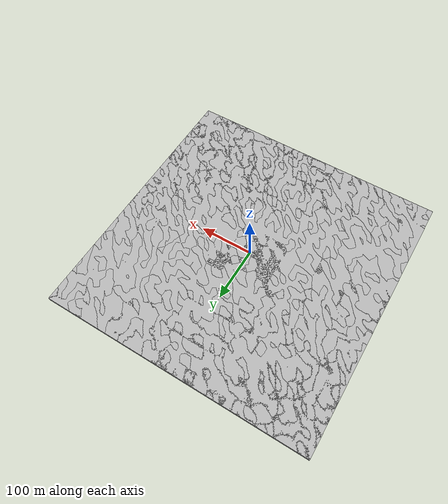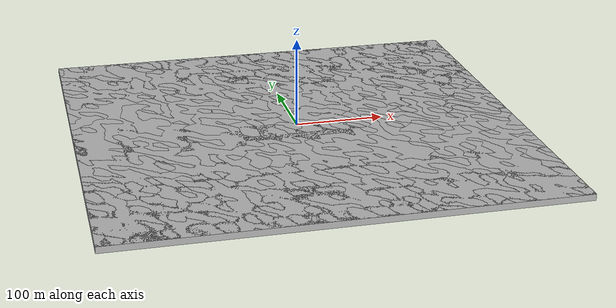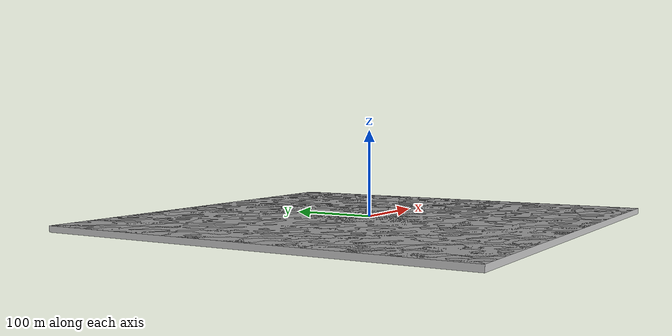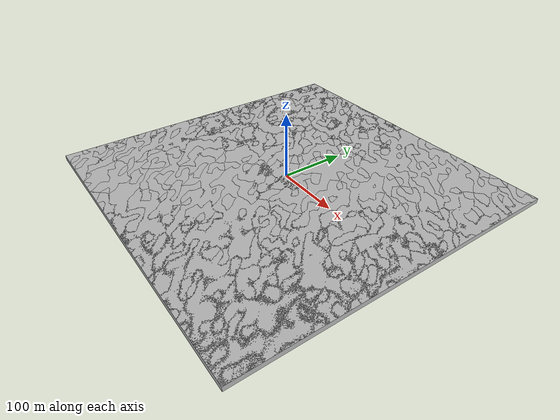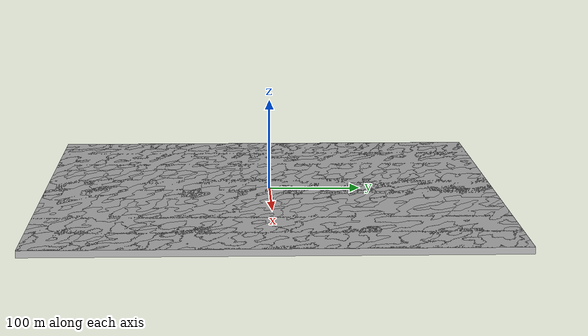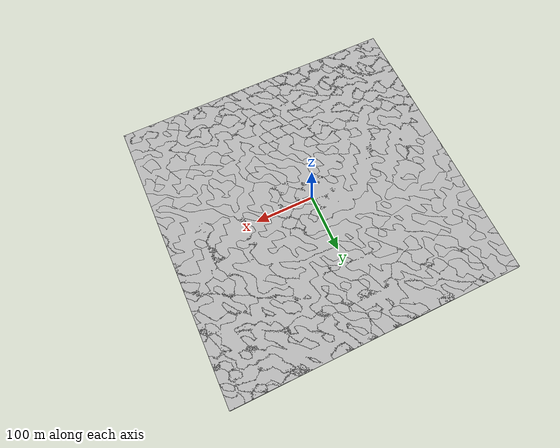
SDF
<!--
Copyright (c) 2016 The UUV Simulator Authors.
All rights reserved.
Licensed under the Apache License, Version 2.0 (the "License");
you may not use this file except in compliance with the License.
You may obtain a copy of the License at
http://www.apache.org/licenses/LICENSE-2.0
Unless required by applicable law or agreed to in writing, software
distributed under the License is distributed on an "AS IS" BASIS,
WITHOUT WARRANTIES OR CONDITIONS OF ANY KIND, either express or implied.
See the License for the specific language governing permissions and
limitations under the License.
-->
<?xml version="1.0" ?>
<sdf version="1.4">

<model name="ocean">
  <static>true</static>
  <link name="ocean_link">

  <visual name="ocean_visual1">
    <pose>0 0 0 0 0 0</pose>
    <geometry>
      <mesh><uri>model://ocean/mesh.dae</uri><scale>0.5 0.5 0.5</scale></mesh>
    </geometry>
    <material>
      <script>
        <uri>model://ocean/materials/scripts/ocean.material</uri>
        <name>Waves_GLSL</name>
      </script>
    </material>
  </visual>

  <visual name="ocean_below">
    <pose>0 0 0 0 0 0</pose>
    <geometry>
      <mesh><uri>model://ocean/mesh_below.dae</uri><scale>0.5 0.5 0.5</scale></mesh>
    </geometry>
    <material>
      <script>
        <uri>model://ocean/materials/scripts/ocean.material</uri>
        <name>Waves_GLSL</name>
      </script>
    </material>
  </visual>
  <visual name="north">
    <pose>250 0 -3.5 0 -1.5708 0</pose>
    <geometry><plane><normal>0 0 1</normal><size>7 500</size></plane></geometry>
    <material>
      <script>
        <uri>model://ocean/materials/scripts/ocean.material</uri>
        <name>Seabox</name>
      </script>
    </material>
  </visual>

  <visual name="south">
    <pose>-250 0 -3.5 0 1.5708 0</pose>
    <geometry><plane><normal>0 0 1</normal><size>7 500</size></plane></geometry>
    <material>
      <script>
        <uri>model://ocean/materials/scripts/ocean.material</uri>
        <name>Seabox</name>
      </script>
    </material>
  </visual>

  <visual name="west">
    <pose>0 250 -3.5 1.5708 0 0</pose>
    <geometry><plane><normal>0 0 1</normal><size>500 7</size></plane></geometry>
    <material>
      <script>
        <uri>model://ocean/materials/scripts/ocean.material</uri>
        <name>Seabox</name>
      </script>
    </material>
  </visual>

  <visual name="east">
    <pose>0 -250 -3.5 -1.5708 0 0</pose>
    <geometry><plane><normal>0 0 1</normal><size>500 7</size></plane></geometry>
    <material>
      <script>
        <uri>model://ocean/materials/scripts/ocean.material</uri>
        <name>Seabox</name>
      </script>
    </material>
  </visual>

  </link>
</model>
</sdf>
